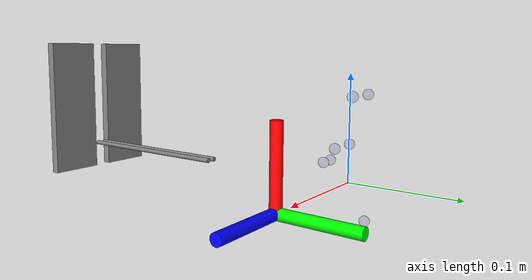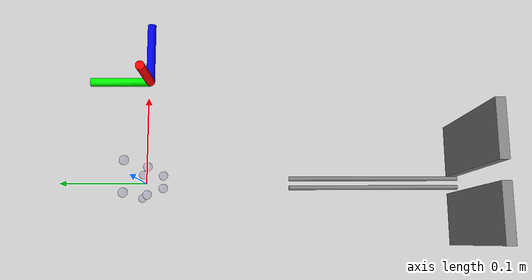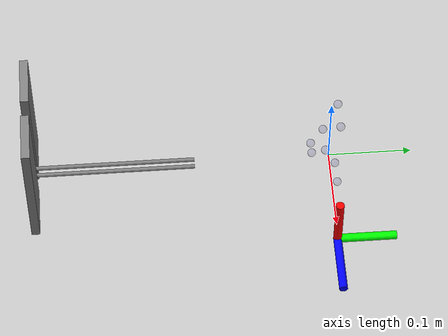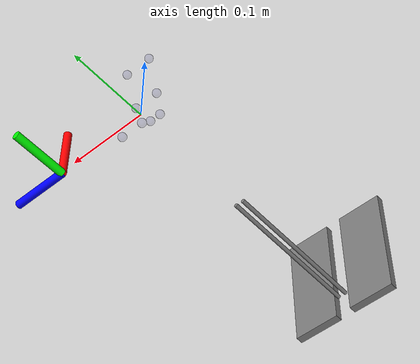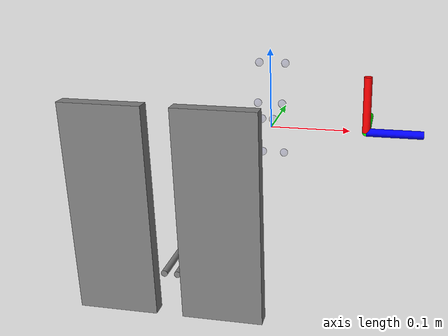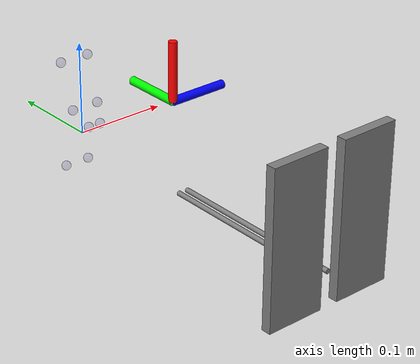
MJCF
<mujoco model="testPassiveWalker">

    <compiler inertiafromgeom='true' angle='degree'/>
    <option gravity='0 0 -9.81'/>
    <asset>
		<!-- Sets sky rendering
		-->
        <texture type="skybox" builtin="gradient" width="100" height="100" rgb1="1 1 1"
            rgb2="1 1 1"/>
		<!-- Not clear to me where this is used yet
		-->
        <texture name="texgeom" type="cube" builtin="flat" mark="cross" width="127" height="1278"
            rgb1="0.1 0.8 0.1" rgb2="0.8 0.6 0.4" markrgb="1 1 1" random="0.01"/>
		<!-- Sets floor rendering
		-->
        <texture name="texplane" type="2d" builtin="checker" rgb1=".2 .3 .4" rgb2=".1 0.15 0.2"
            width="1000" height="1000"/>
		<!-- Create materials based on textures above
		-->
        <material name='MatPlane' reflectance='0.5' texture="texplane"/>
        <material name='geom' texture="texgeom" texuniform="true"/>
		<mesh file="bunny.stl" scale = '2 2 2' />
		<mesh file="miniature_monkey.stl" scale = '2e-3 2e-3 2e-3' />
    </asset>

	<default>
    <site type="sphere" rgba=".2 .2 .5 .1" size="5e-3"/>
        <camera pos='1 1 1' euler='90 0 0'/>

		<default class = 'HAT'>
			<geom density='1.55e-3' type='capsule' size='1.56e-3 241e-3' />
<!-- Remember to add m1 = 0 and m2 = 31 and  delta_m = 68.78
-->
		</default>
		<default class = 'pelvis'>
			<geom mass='1776e-3' type='capsule' size='1.56e-3 31.43e-3' />
		</default>
		<default class = 'thigh'>
			<geom density='2.89e-3' type='capsule' size='1.56e-3 81.5e-3' />
<!-- Remember to add m1 = 37.14 and m2 = 48.27
-->
		</default>
		<default class = 'shin'>
			<geom density='0.87e-3' type='capsule' size='1.56e-3 91e-3' />
<!-- Remember to add m1 = 39.67 and m2 = 0 and delta_m = 25.9
-->
		</default>
		<default class = 'foot_cap'>
			<geom density='0.14e-3' type='capsule' size='1.56e-3 37e-3' />
<!-- Remember to add m1 = 33.28 and m2 = 57.52 and delta_m = 0
-->
		</default>
		<default class = 'hip_joint_x'>
      <joint type='hinge' axis='1 0 0' ref='0' range='-40 90' limited='true' armature='0.0001' stiffness='0' springref='0'/>
		</default>
		<default class = 'knee_joint'>
			<joint type='hinge' axis='1 0 0' range='0 40' limited='true'  armature='0.0006'  stiffness='0' springref='0'/>
		</default>
		<default class = 'ankle_joint_x'>
			<joint type='hinge' axis='1 0 0' pos='0 0 0' range='-60 30' limited='true'  armature='0.0006' stiffness='0' springref='0'/>
		</default>
	</default>

	<worldbody>
        <light directional='false' diffuse='.8 .8 .8' specular='0.3 0.3 0.3' pos='0 0 40.5' dir='0 0 -1'/>

		<!-- Everything pretty self explanatory, condim = 3 sets the contact type to Regular frictional contact, opposing slip in the tangent plane. see http://mujoco.org/book/modeling.html#CSchema for details
		-->
        <body name='axes' pos='20e-3 -1e-3 0'>
          <geom name='x' type='cylinder' fromto='100e-3 0 0 170e-3 0 0' size='5e-3' rgba='0 0 1 1'/>
          <geom name='y' type='cylinder' fromto='100e-3 0 0 100e-3 70e-3 0' size='5e-3' rgba='0 1 0 1'/>
          <geom name='z' type='cylinder' fromto='100e-3 0 0 100e-3 0 70e-3' size='5e-3' rgba='1 0 0 1'/>
        </body>

        <body name='left_wheel' pos='0 -172.5e-3 0' euler='0 0 0'>
          <geom name='left_spoke' density='5e3' type='cylinder' size='2.5e-3 96.25e-3' pos = '5e-3 -86.25e-3 0' euler='90 0 0'/>
          <joint name='left_wheel' type='hinge' axis='1 0 0'  pos='0 0 0'/>
          <body name='left_foothold' pos='40e-3 -185e-3 0' euler='0 0 0'>
            <geom name='left_foothold' density='5e4'  type='box' size='80e-3 5e-3 30e-3' pos='0 0 50e-3' euler='0 90 0'/>
            <joint name='left_pedal' type='hinge' axis='1 0 0' pos='0 0 0'/>
            <site name="left_foothold_bottom" pos='0 0 0'/>
            <site name="left_foothold_top"    pos='0 0 74e-3'/>
          </body>
        </body>

        <body name='right_wheel' pos='0 -172.5e-3 0' euler='0 0 0'>
          <geom name='right_spoke' density='5e3' type='cylinder' size='2.5e-3 96.25e-3' pos = '-5e-3 -86.25e-3 0' euler='90 0 0'/>
          <joint name='right_wheel' type='hinge' axis='1 0 0'  pos='0 0 0'/>
          <body name='right_foothold' pos='-40e-3 -185e-3 0' euler='0 0 0'>
            <geom name='right_foothold' density='5e4'  type='box' size='80e-3 5e-3 30e-3' pos='0 0 50e-3' euler='0 90 0'/>
            <joint name='right_pedal' type='hinge' axis='1 0 0' pos='0 0 0'/>
            <site name="right_foothold_bottom" pos='0 0 0'/>
            <site name="right_foothold_top"    pos='0 0 74e-3'/>
          </body>
        </body>

        <body name='lower_body' pos='0 0 0' euler='0 0 0'>

			      <!-- Details on attributes of geoms here: http://mujoco.org/book/modeling.html
			      -->

            <site name="r_GMED_pelvis" pos='-16.5e-3 9.8e-3 80.6e-3'/>
            <site name="l_GMED_pelvis" pos='16.5e-3 9.8e-3 80.6e-3'/>

            <site name="r_IL_pelvis" pos='-7e-3 -21.5e-3 17.3e-3'/>
            <site name="l_IL_pelvis" pos='7e-3 -21.5e-3 17.3e-3'/>

            <site name="r_RF_pelvis" pos='-15.3e-3 -6.4e-3 33e-3' />
            <site name="l_RF_pelvis" pos='15.3e-3 -6.4e-3 33e-3' />

            <site name="r_BF_pelvis" pos='-14e-3 11.1e-3 -37.8e-3'/>
            <site name="l_BF_pelvis" pos='14e-3 11.1e-3 -37.8e-3'/>

		    </body>
		      <!-- End Lower body
		      -->
	</worldbody>

<actuator>

  <velocity name='right_wheel' gear='1' joint='right_wheel' ctrllimited='true' ctrlrange='-1 1' />
  <velocity name='left_wheel' gear='1' joint='left_wheel' ctrllimited='true' ctrlrange='-1 1' />
</actuator>

</mujoco>
